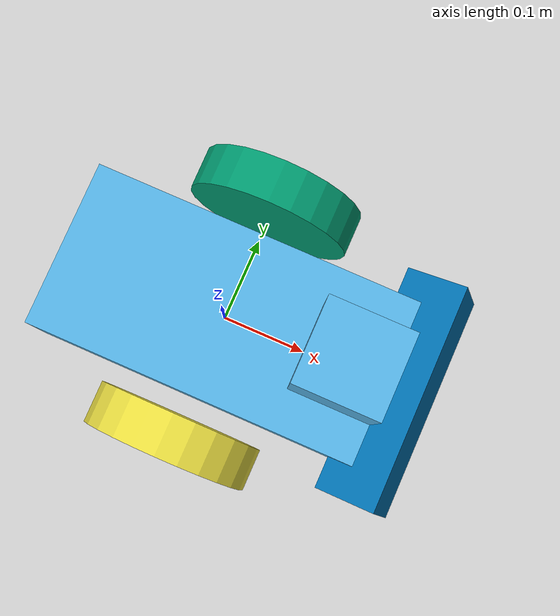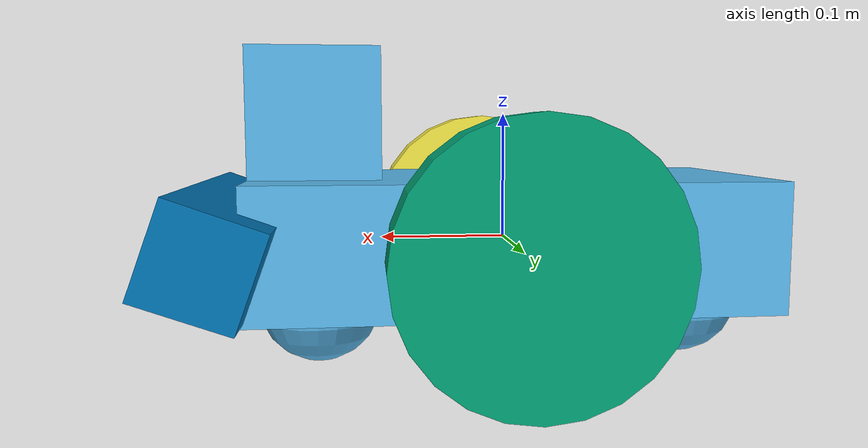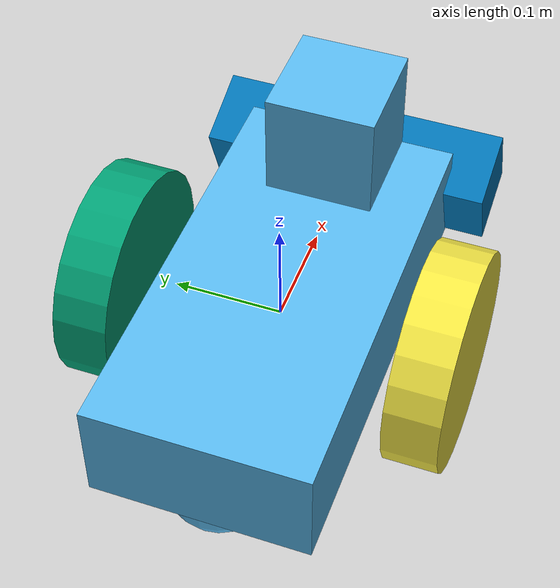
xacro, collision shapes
<?xml version='1.0'?>

<robot name="slam_project" xmlns:xacro="http://www.ros.org/wiki/xacro">

  <xacro:include filename="$(find slam_project)/urdf/slam_project.gazebo" />
  <xacro:property name="M_PI" value="3.1415926535897931" />

  <link name="robot_footprint"></link>

  <joint name="robot_footprint_joint" type="fixed">
    <origin xyz="0 0 0" rpy="0 0 0" />
    <parent link="robot_footprint"/>
    <child link="chassis" />
  </joint>

  <link name='chassis'>
    <pose>0 0 0.1 0 0 0</pose>

    <inertial>
      <mass value="15.0"/>
      <origin xyz="0.0 0 0" rpy=" 0 0 0"/>
      <inertia
	  ixx="0.1" ixy="0" ixz="0"
	  iyy="0.1" iyz="0"
	  izz="0.1"
	  />
    </inertial>

    <collision name='collision'>
      <origin xyz="0 0 0" rpy=" 0 0 0"/>
      <geometry>
	<box size=".4 .2 .1"/>
      </geometry>
    </collision>

    <visual name='chassis_visual'>
      <origin xyz="0 0 0" rpy=" 0 0 0"/>
      <geometry>
	<box size=".4 .2 .1"/>
      </geometry>
    </visual>

    <collision name='back_caster_collision'>
      <origin xyz="-0.15 0 -0.05" rpy=" 0 0 0"/>
      <geometry>
	<sphere radius="0.0499"/>
      </geometry>
    </collision>

    <visual name='back_caster_visual'>
      <origin xyz="-0.15 0 -0.05" rpy=" 0 0 0"/>
      <geometry>
	<sphere radius="0.05"/>
      </geometry>
    </visual>

    <collision name='front_caster_collision'>
      <origin xyz="0.15 0 -0.05" rpy=" 0 0 0"/>
      <geometry>
	<sphere radius="0.0499"/>
      </geometry>
    </collision>

    <visual name='front_caster_visual'>
      <origin xyz="0.15 0 -0.05" rpy=" 0 0 0"/>
      <geometry>
	<sphere radius="0.05"/>
      </geometry>
    </visual>

 </link>

 <link name='left_wheel'>

   <pose>0 0 0 0 0 0</pose>

   <inertial>
     <mass value="5.0"/>
     <origin xyz="0.0 0 0" rpy=" 0 0 0"/>
     <inertia
	 ixx="0.1" ixy="0" ixz="0"
	 iyy="0.1" iyz="0"
	 izz="0.1"
	 />
   </inertial>

   <collision name='Lwheel_collision'>
     <origin xyz="0 0 0" rpy=" 0 1.5707 1.5707"/>
     <geometry>
       <cylinder radius=".1" length=".05"/>
     </geometry>
   </collision>

   <visual name='Lwheel_visual'>
     <origin xyz="0 0 0" rpy=" 0 1.5707 1.5707"/>
     <geometry>
       <cylinder radius=".1" length=".05"/>
     </geometry>
   </visual>

 </link>

 <joint type="continuous" name="left_wheel_hinge">
   <origin xyz="0 0.15 0" rpy="0 0 0"/>
   <child link="left_wheel"/>
   <parent link="chassis"/>
   <axis xyz="0 1 0" rpy="0 0 0"/>
   <limit effort="10000" velocity="1000"/>
   <joint_properties damping="1.0" friction="1.0"/>
 </joint>

 <link name='right_wheel'>

   <pose>0 0 0 0 0 0</pose>

   <inertial>
     <mass value="5.0"/>
     <origin xyz="0.0 0 0" rpy=" 0 0 0"/>
     <inertia
	 ixx="0.1" ixy="0" ixz="0"
	 iyy="0.1" iyz="0"
	 izz="0.1"
	 />
   </inertial>

   <collision name='Rwheel_collision'>
     <origin xyz="0 0 0" rpy=" 0 1.5707 1.5707"/>
     <geometry>
       <cylinder radius=".1" length=".05"/>
     </geometry>
   </collision>

   <visual name='Rwheel_visual'>
     <origin xyz="0 0 0" rpy=" 0 1.5707 1.5707"/>
     <geometry>
       <cylinder radius=".1" length=".05"/>
     </geometry>
   </visual>

 </link>

 <joint type="continuous" name="right_wheel_hinge">
   <origin xyz="0 -0.15 0" rpy="0 0 0"/>
   <child link="right_wheel"/>
   <parent link="chassis"/>
   <axis xyz="0 1 0" rpy="0 0 0"/>
   <limit effort="10000" velocity="1000"/>
   <joint_properties damping="1.0" friction="1.0"/>
 </joint>

 <link name="camera">

   <pose>0 0 0 0 0 0</pose>

   <inertial>
     <mass value="0.1"/>
     <origin xyz="0.0 0 0" rpy=" 0 0 0"/>
     <inertia
	 ixx="1e-6" ixy="0" ixz="0"
	 iyy="1e-6" iyz="0"
	 izz="1e-6"
	 />
   </inertial>

   <collision name='camera_collision'>
     <origin xyz="0 0 0" rpy=" 0 0 0"/>
     <geometry>
       <box size="0.0730 .2760 0.0720"/>
     </geometry>
   </collision>

   <visual name='camera_visual'>
     <origin xyz="0 0 0" rpy=" 0 0 0"/>
     <geometry>
       <mesh filename= "package://slam_project/meshes/kinect.dae"/>
     </geometry>
   </visual>

 </link>

 <joint name="base_camera_joint" type="fixed">
   <origin xyz="0.22 0 0" rpy="0 -0.349 0"/>
   <child link="camera"/>
   <parent link="chassis"/>
 </joint>

 <joint name="camera_depth_joint" type="fixed">
    <origin xyz="0 0.011 0" rpy="0 0 0" />
    <parent link="camera" />
    <child link="camera_depth_frame" />
  </joint>

  <link name="camera_depth_frame">
    <inertial>
      <mass value="0.01" />
      <origin xyz="0 0 0" />
      <inertia ixx="0.001" ixy="0.0" ixz="0.0"
        iyy="0.001" iyz="0.0"
        izz="0.001" />
    </inertial>
  </link>

 <joint name="camera_depth_optical_joint" type="fixed">
    <origin xyz="0 0 0" rpy="${-M_PI/2} 0 ${-M_PI/2}" />
    <parent link="camera_depth_frame" />
    <child link="camera_depth_optical_frame" />
  </joint>

  <link name="camera_depth_optical_frame">
    <inertial>
      <mass value="0.001" />
      <origin xyz="0 0 0" />
      <inertia ixx="0.0001" ixy="0.0" ixz="0.0"
        iyy="0.0001" iyz="0.0"
        izz="0.0001" />
    </inertial>
  </link>

 <joint name="camera_rgb_joint" type="fixed">
    <origin xyz="0 -0.012 0" rpy="0 0 0" />
    <parent link="camera" />
    <child link="camera_rgb_frame" />
  </joint>

  <link name="camera_rgb_frame">
    <inertial>
      <mass value="0.001" />
      <origin xyz="0 0 0" />
      <inertia ixx="0.0001" ixy="0.0" ixz="0.0"
        iyy="0.0001" iyz="0.0"
        izz="0.0001" />
    </inertial>
  </link>

 <joint name="camera_rgb_optical_joint" type="fixed">
    <origin xyz="0 0 0" rpy="${-M_PI/2} 0 ${-M_PI/2}" />
    <parent link="camera_rgb_frame" />
    <child link="camera_rgb_optical_frame" />
  </joint>

  <link name="camera_rgb_optical_frame">
    <inertial>
      <mass value="0.001" />
      <origin xyz="0 0 0" />
      <inertia ixx="0.0001" ixy="0.0" ixz="0.0"
        iyy="0.0001" iyz="0.0"
        izz="0.0001" />
    </inertial>
  </link>

 <link name="hokuyo">

   <pose>0 0 0 0 0 0</pose>

   <inertial>
     <mass value="0.1"/>
     <origin xyz="0.0 0 0" rpy=" 0 0 0"/>
     <inertia
	 ixx="1e-6" ixy="0" ixz="0"
	 iyy="1e-6" iyz="0"
	 izz="1e-6"
	 />
   </inertial>

   <collision name='hokuyo_collision'>
     <origin xyz="0 0 0" rpy=" 0 0 0"/>
     <geometry>
       <box size="0.1 0.1 0.1"/>
     </geometry>
   </collision>

   <visual name='hokuyo_visual'>
     <origin xyz="0 0 0" rpy=" 0 0 0"/>
     <geometry>
       <mesh filename= "package://slam_project/meshes/hokuyo.dae"/>
     </geometry>
   </visual>

 </link>

 <joint name="hokuyo_joint" type="fixed">
   <origin xyz=".15 0 .1" rpy="0 0 0"/>
   <child link="hokuyo"/>
   <parent link="chassis"/>
 </joint>

</robot>
